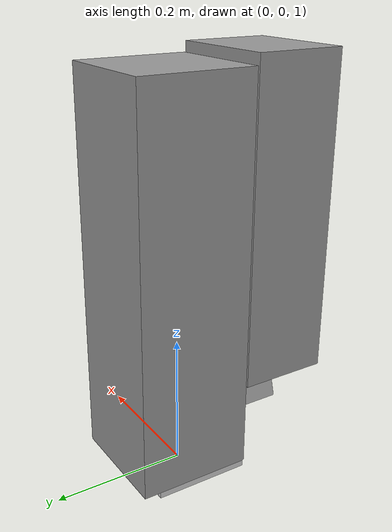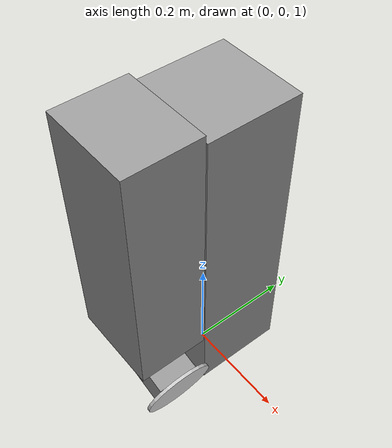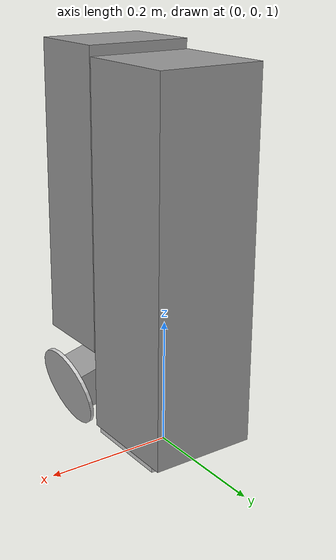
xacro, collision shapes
<robot xmlns:sensor="http://playerstage.sourceforge.net/gazebo/xmlschema/#sensor"
xmlns:controller="http://playerstage.sourceforge.net/gazebo/xmlschema/#controller"
xmlns:interface="http://playerstage.sourceforge.net/gazebo/xmlschema/#interface"
xmlns:xacro="http://www.ros.org/wiki/xacro" name="sr_arm_motor">
  <xacro:include filename="$(find sr_description)/materials.urdf.xacro" />
  <xacro:include filename="$(find sr_description)/arm/xacro/full_arm_motor.urdf.xacro" />
  <!--xacro:include filename="$(find sr_description)/other/xacro/gazebo/gazebo.urdf.xacro" /-->
  <link name="world" />
  <joint name="arm_to_world_fixed" type="fixed">
    <parent link="world" />
    <child link="shadowarm_base" />
    <origin rpy="0 0 0" xyz="0 0 1.0" />
  </joint>
  <xacro:sr_arm_motor></xacro:sr_arm_motor>
</robot>

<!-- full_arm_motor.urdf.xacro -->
<robot xmlns:sensor="http://playerstage.sourceforge.net/gazebo/xmlschema/#sensor"
xmlns:controller="http://playerstage.sourceforge.net/gazebo/xmlschema/#controller"
xmlns:interface="http://playerstage.sourceforge.net/gazebo/xmlschema/#interface"
xmlns:xacro="http://www.ros.org/wiki/xacro" name="full_arm_motor">
  <xacro:include filename="$(find sr_description)/arm/xacro/base/shadowarm_base.urdf.xacro" />
  <xacro:include filename="$(find sr_description)/arm/xacro/trunk/shadowarm_trunk.urdf.xacro" />
  <xacro:include filename="$(find sr_description)/arm/xacro/upper_arm/shadowarm_upperarm.urdf.xacro" />
  <xacro:include filename="$(find sr_description)/arm/xacro/lower_arm/shadowarm_lowerarm.urdf.xacro" />
  <xacro:include filename="$(find sr_description)/arm/xacro/hand_support/shadowarm_handsupport_motor.urdf.xacro" />
  <xacro:macro name="sr_arm_motor">
    <xacro:shadowarm_base></xacro:shadowarm_base>
    <xacro:shadowarm_trunk parent="shadowarm_base">
    </xacro:shadowarm_trunk>
    <xacro:shadowarm_upperarm parent="shadowarm_trunk">
    </xacro:shadowarm_upperarm>
    <xacro:shadowarm_lowerarm parent="shadowarm_upperarm">
    </xacro:shadowarm_lowerarm>
    <xacro:shadowarm_handsupport_motor parent="shadowarm_lowerarm">
    </xacro:shadowarm_handsupport_motor>
    <gazebo>
      <plugin name="gazebo_ros_control" filename="libgazebo_ros_control.so">
      </plugin>
    </gazebo>

  </xacro:macro>
</robot>

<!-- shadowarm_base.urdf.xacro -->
<robot xmlns:xacro="http://www.ros.org/wiki/xacro">
  <xacro:property name="M_PI" value="3.1415926535897931" />
  <xacro:macro name="shadowarm_base">
    <link name="shadowarm_base">
      <inertial>
        <origin xyz="0 0 0" rpy="0 0 0" />
        <mass value="0.4" />
        <inertia ixx="0.00071" ixy="0.0" ixz="0.0" iyy="0.00071"
        iyz="0.0" izz="0.0014" />
      </inertial>
      <visual>
        <origin xyz="0 0 0" rpy="0 0 0" />
        <geometry name="shadowarm_base_visual">
          <mesh filename="package://sr_description/arm/model/arm_base.dae"
          scale="0.001 0.001 0.001" />
        </geometry>
        <material name="LightGrey" />
      </visual>
      <collision>
        <origin xyz="0 0 0.005" rpy="0 0 0" />
        <geometry name="shadowarm_base_collision">
          <box size="0.145 0.145 0.012" />
        </geometry>
      </collision>
    </link>
    <gazebo reference="shadowarm_base">
      <selfCollide>false</selfCollide>
    </gazebo>
  </xacro:macro>
</robot>

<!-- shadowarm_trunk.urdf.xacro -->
<robot xmlns:xacro="http://www.ros.org/wiki/xacro">
  <xacro:include filename="$(find sr_description)/arm/xacro/trunk/shadowarm_trunk.transmission.xacro" />
  <xacro:macro name="shadowarm_trunk" params="parent">
    <link name="shadowarm_trunk">
      <inertial>
        <origin xyz="0 0 0.26525" rpy="0 0 0" />
        <mass value="10" />
        <inertia ixx="0.298" ixy="0.0" ixz="0.0" iyy="0.298"
        iyz="0.0" izz="0.0361" />
      </inertial>
      <visual>
        <origin xyz="0 0 0.005" rpy="0 0 0" />
        <geometry name="shadowarm_trunk_visual">
          <mesh filename="package://sr_description/arm/model/arm_trunk.dae"
          scale="0.001 0.001 0.001" />
        </geometry>
        <material name="Grey" />
      </visual>
      <collision>
        <origin xyz="0 0.02 0.30" rpy="0 0 0" />
        <geometry name="shadowarm_trunk_collision">
          <box size="0.170 0.170 0.580" />
        </geometry>
      </collision>
    </link>
    <gazebo reference="shadowarm_trunk">
      <selfCollide>false</selfCollide>
    </gazebo>
    <joint name="ShoulderJRotate" type="revolute">
      <parent link="${parent}" />
      <child link="shadowarm_trunk" />
      <origin xyz="0 0 0.01" rpy="0.0 0.0 0.0" />
      <axis xyz="0 0 1" />
      <limit lower="-${M_PI/4}" upper="${M_PI/2}" effort="70"
      velocity="1.0" />
      <dynamics damping="5.5" />
    </joint>
    <gazebo reference="ShoulderJRotate">
      <provideFeedback>1</provideFeedback>
      <implicitSpringDamper>1</implicitSpringDamper>
    </gazebo>
    <xacro:shadowarm_trunk_transmission />
  </xacro:macro>
</robot>

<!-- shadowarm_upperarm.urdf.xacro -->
<robot xmlns:xacro="http://www.ros.org/wiki/xacro">
  <xacro:include filename="$(find sr_description)/arm/xacro/upper_arm/shadowarm_upperarm.transmission.xacro" />
  <xacro:macro name="shadowarm_upperarm" params="parent">
    <link name="shadowarm_upperarm">
      <inertial>
        <origin xyz="0 0 0.1845" rpy="0 0 0" />
        <mass value="2" />
        <inertia ixx="0.044" ixy="0.0" ixz="0.0" iyy="0.044"
        iyz="0.0" izz="0.0056" />
      </inertial>
      <visual>
        <origin xyz="0 0.067 0" rpy="0 0 0" />
        <geometry name="shadowarm_upperarm_visual">
          <mesh filename="package://sr_description/arm/model/upper_arm.dae"
          scale="0.001 0.001 0.001" />
        </geometry>
        <material name="Grey" />
      </visual>
      <collision>
        <origin xyz="0 0 0.16" rpy="0 -${M_PI} 0" />
        <geometry name="shadowarm_upperarm_collision">
          <box size="0.170 0.133 0.470" />
        </geometry>
      </collision>
    </link>
    <gazebo reference="shadowarm_upperarm">
      <selfCollide>false</selfCollide>
    </gazebo>
    <joint name="ShoulderJSwing" type="revolute">
      <parent link="${parent}" />
      <child link="shadowarm_upperarm" />
      <origin xyz="0 -0.134 0.5305" rpy="0 -${M_PI} 0.0" />
      <!-- yaw=-0.026 -->
      <axis xyz="0 -1 0" />
      <limit lower="0" upper="${M_PI/2}" effort="100"
      velocity="1.0" />
      <dynamics damping="5.3" />
    </joint>
    <gazebo reference="ShoulderJSwing">
      <provideFeedback>1</provideFeedback>
      <implicitSpringDamper>1</implicitSpringDamper>
    </gazebo>
    <xacro:shadowarm_upperarm_transmission />
  </xacro:macro>
</robot>

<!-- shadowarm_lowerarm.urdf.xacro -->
<robot xmlns:xacro="http://www.ros.org/wiki/xacro">
  <xacro:include filename="$(find sr_description)/arm/xacro/lower_arm/shadowarm_lowerarm.transmission.xacro" />
  <xacro:macro name="shadowarm_lowerarm" params="parent">
    <link name="shadowarm_lowerarm">
      <inertial>
        <origin xyz="0.08 0 0.0625" rpy="0 0 0" />
        <mass value="1.7" />
        <inertia ixx="0.0016" ixy="0.0" ixz="0.0" iyy="0.0016"
        iyz="0.0" izz="0.0018" />
      </inertial>
      <visual>
        <origin xyz="0.03 0 0.036" rpy="0 0 0" />
        <geometry name="shadowarm_lowerarm_visual">
          <mesh filename="package://sr_description/arm/model/elbow_flex.dae"
          scale="0.001 0.001 0.001" />
        </geometry>
        <material name="Grey" />
      </visual>
      <collision>
        <origin xyz="0.08 0 0.0625" rpy="0 0 0" />
        <geometry name="shadowarm_lowerarm_collision">
          <box size="0.06 0.08 0.1" />
        </geometry>
      </collision>
    </link>
    <gazebo reference="shadowarm_lowerarm">
      <selfCollide>false</selfCollide>
    </gazebo>
    <joint name="ElbowJSwing" type="revolute">
      <parent link="${parent}" />
      <child link="shadowarm_lowerarm" />
      <origin xyz="0 0 0.369" rpy="0 0 0" />
      <axis xyz="0 -1 0" />
      <limit lower="0.52" upper="2.09439510239" effort="50"
      velocity="1.0" />
      <dynamics damping="5.5" />
    </joint>
    <gazebo reference="ElbowJSwing">
      <provideFeedback>1</provideFeedback>
      <implicitSpringDamper>1</implicitSpringDamper>
    </gazebo>
    <xacro:shadowarm_lowerarm_transmission />
  </xacro:macro>
</robot>

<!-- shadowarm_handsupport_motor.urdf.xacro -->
<robot xmlns:xacro="http://www.ros.org/wiki/xacro">
  <xacro:include filename="$(find sr_description)/arm/xacro/hand_support/shadowarm_handsupport_motor.transmission.xacro" />
  <xacro:macro name="shadowarm_handsupport_motor" params="parent">
    <link name="shadowarm_handsupport">
      <inertial>
        <origin xyz="0 0 0" rpy="0 0 0" />
        <mass value="0.75" />
        <inertia ixx="0.00086" ixy="0.0" ixz="0.0" iyy="0.00086"
        iyz="0.0" izz="0.0017" />
      </inertial>
      <visual>
        <origin xyz="0 0 -0.04" rpy="0 0 0" />
        <geometry name="shadowarm_handsupport_visual">
          <mesh filename="package://sr_description/arm/model/elbow_rotate_motor.dae"
          scale="0.001 0.001 0.001" />
        </geometry>
        <material name="LightGrey" />
      </visual>
      <collision>
        <origin xyz="0 0 -0.005" rpy="0 0 0" />
        <geometry name="shadowarm_handsupport_collision">
          <cylinder radius="0.0675" length="0.006" />
        </geometry>
      </collision>
    </link>
    <gazebo reference="shadowarm_handsupport">
      <material>Gazebo/Grey</material>
      <selfCollide>false</selfCollide>
    </gazebo>
    <joint name="ElbowJRotate" type="revolute">
      <parent link="${parent}" />
      <child link="shadowarm_handsupport" />
      <origin xyz="0.08 0 0.125" rpy="0.0 0 0" />
      <axis xyz="0 0 -1" />
      <limit lower="-${M_PI/2}" upper="${M_PI/2}" effort="30"
      velocity="1.0" />
      <dynamics damping="5.5" />
    </joint>
    <gazebo reference="ElbowJRotate">
      <provideFeedback>1</provideFeedback>
      <implicitSpringDamper>1</implicitSpringDamper>
    </gazebo>
    <xacro:shadowarm_handsupport_motor_transmission />
  </xacro:macro>
</robot>
